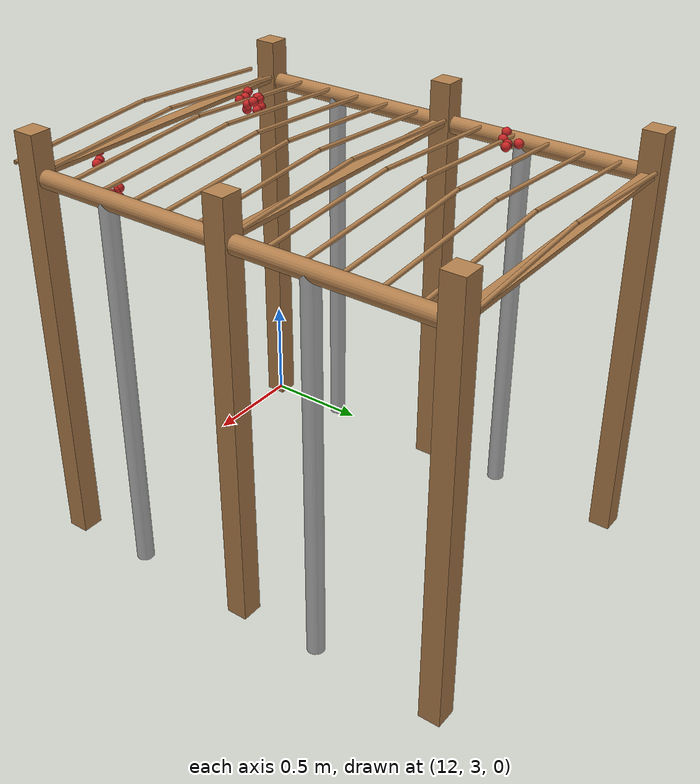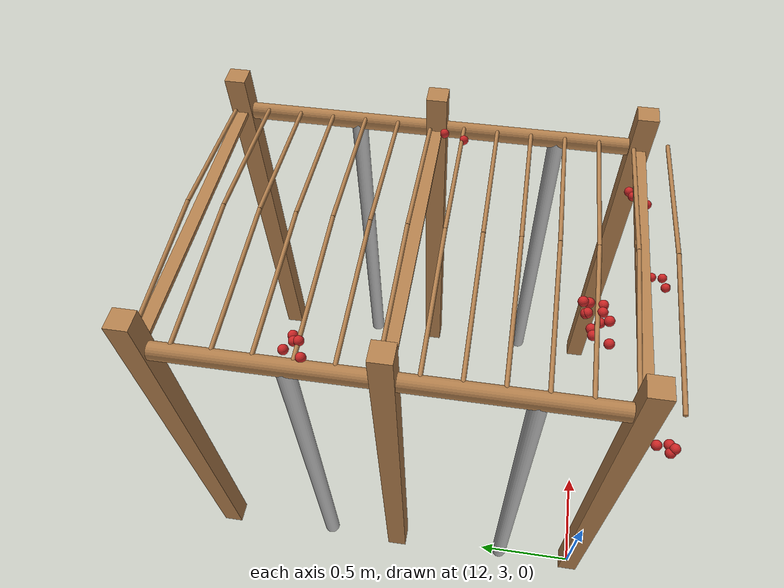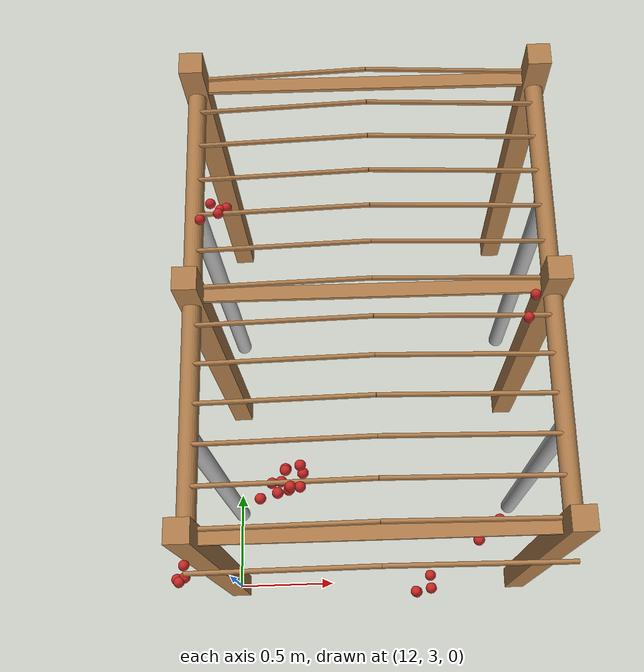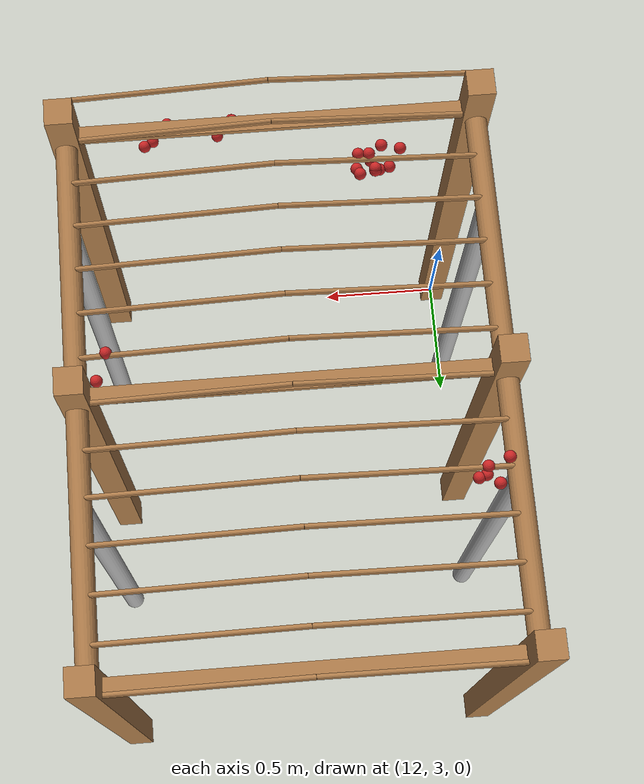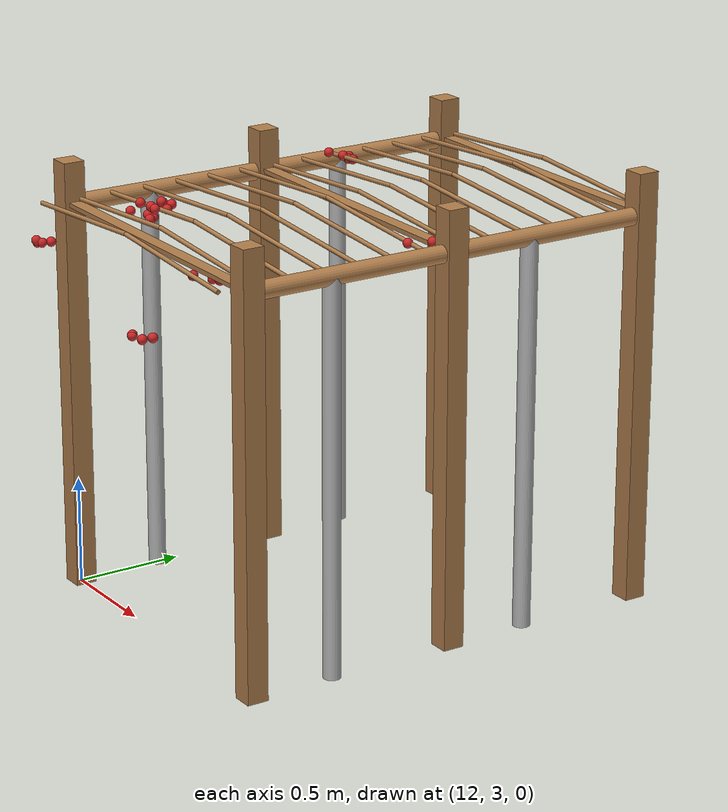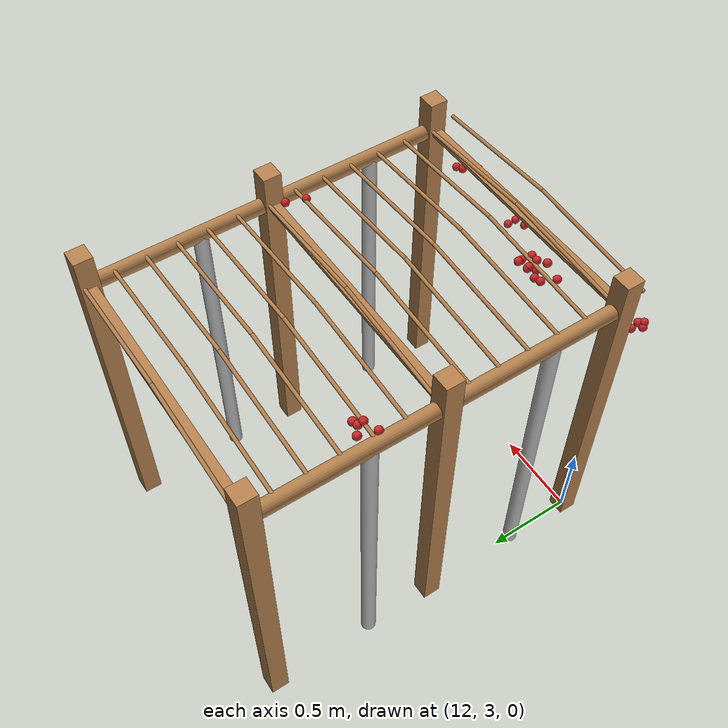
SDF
<sdf version="1.4">
 <model name="pergola">
  <include><name>post_91</name><pose>12.0 3.0 0 0 0 0</pose><uri>model://post</uri></include>
  <include><name>post_92</name><pose>12.0 4.0 0 0 0 0</pose><uri>model://post</uri></include>
  <include><name>post_93</name><pose>12.0 5.0 0 0 0 0</pose><uri>model://post</uri></include>
  <include><name>post_102</name><pose>13.5 3.0 0 0 0 0</pose><uri>model://post</uri></include>
  <include><name>post_103</name><pose>13.5 4.0 0 0 0 0</pose><uri>model://post</uri></include>
  <include><name>post_104</name><pose>13.5 5.0 0 0 0 0</pose><uri>model://post</uri></include>
  <link name="beam_91">
   <pose>12.75 3.0 1.81 0 0 0</pose>
   <collision name="collision"><geometry><box><size>1.5 0.06 0.02</size></box></geometry></collision>
   <visual name="visual">
    <geometry><box><size>1.5 0.06 0.02</size></box></geometry>
    <material><script><name>Gazebo/Wood</name></script></material>
   </visual>
   <inertial>
    <mass>5</mass>
    <inertia>
     <ixx>0.0016666666666666668</ixx>
     <ixy>0.0</ixy>
     <ixz>0.0</ixz>
     <iyy>0.9390000000000001</iyy>
     <iyz>0.0</iyz>
     <izz>0.9376666666666665</izz>
    </inertia>
   </inertial>
  </link>
  <link name="beam_92">
   <pose>12.75 4.0 1.81 0 0 0</pose>
   <collision name="collision"><geometry><box><size>1.5 0.06 0.02</size></box></geometry></collision>
   <visual name="visual">
    <geometry><box><size>1.5 0.06 0.02</size></box></geometry>
    <material><script><name>Gazebo/Wood</name></script></material>
   </visual>
   <inertial>
    <mass>5</mass>
    <inertia>
     <ixx>0.0016666666666666668</ixx>
     <ixy>0.0</ixy>
     <ixz>0.0</ixz>
     <iyy>0.9390000000000001</iyy>
     <iyz>0.0</iyz>
     <izz>0.9376666666666665</izz>
    </inertia>
   </inertial>
  </link>
  <link name="beam_93">
   <pose>12.75 5.0 1.81 0 0 0</pose>
   <collision name="collision"><geometry><box><size>1.5 0.06 0.02</size></box></geometry></collision>
   <visual name="visual">
    <geometry><box><size>1.5 0.06 0.02</size></box></geometry>
    <material><script><name>Gazebo/Wood</name></script></material>
   </visual>
   <inertial>
    <mass>5</mass>
    <inertia>
     <ixx>0.0016666666666666668</ixx>
     <ixy>0.0</ixy>
     <ixz>0.0</ixz>
     <iyy>0.9390000000000001</iyy>
     <iyz>0.0</iyz>
     <izz>0.9376666666666665</izz>
    </inertia>
   </inertial>
  </link>
  <include><name>tree_83</name><pose>12.0 3.4 0 0 0 0</pose><uri>model://tree_trunk</uri></include>
  <include><name>tree_84</name><pose>12.0 4.4 0 0 0 0</pose><uri>model://tree_trunk</uri></include>
  <include><name>tree_93</name><pose>13.5 3.4 0 0 0 0</pose><uri>model://tree_trunk</uri></include>
  <include><name>tree_94</name><pose>13.5 4.4 0 0 0 0</pose><uri>model://tree_trunk</uri></include>
  <link name="baseBranch_83">
   <pose>12.0 3.5 1.8 1.5707963267948966 0 0</pose>
   <collision name="collision">
    <geometry><cylinder><radius>0.04</radius><length>0.94</length></cylinder></geometry>
   </collision>
   <visual name="visual">
    <geometry><cylinder><radius>0.04</radius><length>0.94</length></cylinder></geometry>
    <material><script><name>Gazebo/WoodFloor</name></script></material>
   </visual>
   <inertial>
    <mass>10</mass>
    <inertia>
     <ixx>0.7403333333333334</ixx>
     <ixy>0.0</ixy>
     <ixz>0.0</ixz>
     <iyy>0.7403333333333334</iyy>
     <iyz>0.0</iyz>
     <izz>0.008</izz>
    </inertia>
   </inertial>
  </link>
  <link name="baseBranch_84">
   <pose>12.0 4.5 1.8 1.5707963267948966 0 0</pose>
   <collision name="collision">
    <geometry><cylinder><radius>0.04</radius><length>0.94</length></cylinder></geometry>
   </collision>
   <visual name="visual">
    <geometry><cylinder><radius>0.04</radius><length>0.94</length></cylinder></geometry>
    <material><script><name>Gazebo/WoodFloor</name></script></material>
   </visual>
   <inertial>
    <mass>10</mass>
    <inertia>
     <ixx>0.7403333333333334</ixx>
     <ixy>0.0</ixy>
     <ixz>0.0</ixz>
     <iyy>0.7403333333333334</iyy>
     <iyz>0.0</iyz>
     <izz>0.008</izz>
    </inertia>
   </inertial>
  </link>
  <link name="baseBranch_93">
   <pose>13.5 3.5 1.8 1.5707963267948966 0 0</pose>
   <collision name="collision">
    <geometry><cylinder><radius>0.04</radius><length>0.94</length></cylinder></geometry>
   </collision>
   <visual name="visual">
    <geometry><cylinder><radius>0.04</radius><length>0.94</length></cylinder></geometry>
    <material><script><name>Gazebo/WoodFloor</name></script></material>
   </visual>
   <inertial>
    <mass>10</mass>
    <inertia>
     <ixx>0.7403333333333334</ixx>
     <ixy>0.0</ixy>
     <ixz>0.0</ixz>
     <iyy>0.7403333333333334</iyy>
     <iyz>0.0</iyz>
     <izz>0.008</izz>
    </inertia>
   </inertial>
  </link>
  <link name="baseBranch_94">
   <pose>13.5 4.5 1.8 1.5707963267948966 0 0</pose>
   <collision name="collision">
    <geometry><cylinder><radius>0.04</radius><length>0.94</length></cylinder></geometry>
   </collision>
   <visual name="visual">
    <geometry><cylinder><radius>0.04</radius><length>0.94</length></cylinder></geometry>
    <material><script><name>Gazebo/WoodFloor</name></script></material>
   </visual>
   <inertial>
    <mass>10</mass>
    <inertia>
     <ixx>0.7403333333333334</ixx>
     <ixy>0.0</ixy>
     <ixz>0.0</ixz>
     <iyy>0.7403333333333334</iyy>
     <iyz>0.0</iyz>
     <izz>0.008</izz>
    </inertia>
   </inertial>
  </link>
  <link name="vine_994">
   <pose>12.375 2.863333333333333 1.85 0 1.5042281630190728 0</pose>
   <collision name="collision">
    <geometry><cylinder><radius>0.01</radius><length>0.7516648189186453</length></cylinder></geometry>
   </collision>
   <visual name="visual">
    <geometry><cylinder><radius>0.01</radius><length>0.7516648189186453</length></cylinder></geometry>
    <material><script><name>Gazebo/WoodFloor</name></script></material>
   </visual>
   <inertial>
    <mass>5</mass>
    <inertia>
     <ixx>0.23554166666666657</ixx>
     <ixy>0.0</ixy>
     <ixz>0.0</ixz>
     <iyy>0.23554166666666657</iyy>
     <iyz>0.0</iyz>
     <izz>0.00025</izz>
    </inertia>
   </inertial>
  </link>
  <link name="vine_995">
   <pose>13.125 2.863333333333333 1.85 0 -1.5042281630190728 0</pose>
   <collision name="collision">
    <geometry><cylinder><radius>0.01</radius><length>0.7516648189186453</length></cylinder></geometry>
   </collision>
   <visual name="visual">
    <geometry><cylinder><radius>0.01</radius><length>0.7516648189186453</length></cylinder></geometry>
    <material><script><name>Gazebo/WoodFloor</name></script></material>
   </visual>
   <inertial>
    <mass>5</mass>
    <inertia>
     <ixx>0.23554166666666657</ixx>
     <ixy>0.0</ixy>
     <ixz>0.0</ixz>
     <iyy>0.23554166666666657</iyy>
     <iyz>0.0</iyz>
     <izz>0.00025</izz>
    </inertia>
   </inertial>
  </link>
  <link name="vine_996">
   <pose>12.375 3.03 1.85 0 1.5042281630190728 0</pose>
   <collision name="collision">
    <geometry><cylinder><radius>0.01</radius><length>0.7516648189186453</length></cylinder></geometry>
   </collision>
   <visual name="visual">
    <geometry><cylinder><radius>0.01</radius><length>0.7516648189186453</length></cylinder></geometry>
    <material><script><name>Gazebo/WoodFloor</name></script></material>
   </visual>
   <inertial>
    <mass>5</mass>
    <inertia>
     <ixx>0.23554166666666657</ixx>
     <ixy>0.0</ixy>
     <ixz>0.0</ixz>
     <iyy>0.23554166666666657</iyy>
     <iyz>0.0</iyz>
     <izz>0.00025</izz>
    </inertia>
   </inertial>
  </link>
  <link name="vine_997">
   <pose>13.125 3.03 1.85 0 -1.5042281630190728 0</pose>
   <collision name="collision">
    <geometry><cylinder><radius>0.01</radius><length>0.7516648189186453</length></cylinder></geometry>
   </collision>
   <visual name="visual">
    <geometry><cylinder><radius>0.01</radius><length>0.7516648189186453</length></cylinder></geometry>
    <material><script><name>Gazebo/WoodFloor</name></script></material>
   </visual>
   <inertial>
    <mass>5</mass>
    <inertia>
     <ixx>0.23554166666666657</ixx>
     <ixy>0.0</ixy>
     <ixz>0.0</ixz>
     <iyy>0.23554166666666657</iyy>
     <iyz>0.0</iyz>
     <izz>0.00025</izz>
    </inertia>
   </inertial>
  </link>
  <link name="vine_998">
   <pose>12.375 3.1966666666666663 1.85 0 1.5042281630190728 0</pose>
   <collision name="collision">
    <geometry><cylinder><radius>0.01</radius><length>0.7516648189186453</length></cylinder></geometry>
   </collision>
   <visual name="visual">
    <geometry><cylinder><radius>0.01</radius><length>0.7516648189186453</length></cylinder></geometry>
    <material><script><name>Gazebo/WoodFloor</name></script></material>
   </visual>
   <inertial>
    <mass>5</mass>
    <inertia>
     <ixx>0.23554166666666657</ixx>
     <ixy>0.0</ixy>
     <ixz>0.0</ixz>
     <iyy>0.23554166666666657</iyy>
     <iyz>0.0</iyz>
     <izz>0.00025</izz>
    </inertia>
   </inertial>
  </link>
  <link name="vine_999">
   <pose>13.125 3.1966666666666663 1.85 0 -1.5042281630190728 0</pose>
   <collision name="collision">
    <geometry><cylinder><radius>0.01</radius><length>0.7516648189186453</length></cylinder></geometry>
   </collision>
   <visual name="visual">
    <geometry><cylinder><radius>0.01</radius><length>0.7516648189186453</length></cylinder></geometry>
    <material><script><name>Gazebo/WoodFloor</name></script></material>
   </visual>
   <inertial>
    <mass>5</mass>
    <inertia>
     <ixx>0.23554166666666657</ixx>
     <ixy>0.0</ixy>
     <ixz>0.0</ixz>
     <iyy>0.23554166666666657</iyy>
     <iyz>0.0</iyz>
     <izz>0.00025</izz>
    </inertia>
   </inertial>
  </link>
  <link name="vine_1000">
   <pose>12.375 3.363333333333333 1.85 0 1.5042281630190728 0</pose>
   <collision name="collision">
    <geometry><cylinder><radius>0.01</radius><length>0.7516648189186453</length></cylinder></geometry>
   </collision>
   <visual name="visual">
    <geometry><cylinder><radius>0.01</radius><length>0.7516648189186453</length></cylinder></geometry>
    <material><script><name>Gazebo/WoodFloor</name></script></material>
   </visual>
   <inertial>
    <mass>5</mass>
    <inertia>
     <ixx>0.23554166666666657</ixx>
     <ixy>0.0</ixy>
     <ixz>0.0</ixz>
     <iyy>0.23554166666666657</iyy>
     <iyz>0.0</iyz>
     <izz>0.00025</izz>
    </inertia>
   </inertial>
  </link>
  <link name="vine_1001">
   <pose>13.125 3.363333333333333 1.85 0 -1.5042281630190728 0</pose>
   <collision name="collision">
    <geometry><cylinder><radius>0.01</radius><length>0.7516648189186453</length></cylinder></geometry>
   </collision>
   <visual name="visual">
    <geometry><cylinder><radius>0.01</radius><length>0.7516648189186453</length></cylinder></geometry>
    <material><script><name>Gazebo/WoodFloor</name></script></material>
   </visual>
   <inertial>
    <mass>5</mass>
    <inertia>
     <ixx>0.23554166666666657</ixx>
     <ixy>0.0</ixy>
     <ixz>0.0</ixz>
     <iyy>0.23554166666666657</iyy>
     <iyz>0.0</iyz>
     <izz>0.00025</izz>
    </inertia>
   </inertial>
  </link>
  <link name="vine_1002">
   <pose>12.375 3.53 1.85 0 1.5042281630190728 0</pose>
   <collision name="collision">
    <geometry><cylinder><radius>0.01</radius><length>0.7516648189186453</length></cylinder></geometry>
   </collision>
   <visual name="visual">
    <geometry><cylinder><radius>0.01</radius><length>0.7516648189186453</length></cylinder></geometry>
    <material><script><name>Gazebo/WoodFloor</name></script></material>
   </visual>
   <inertial>
    <mass>5</mass>
    <inertia>
     <ixx>0.23554166666666657</ixx>
     <ixy>0.0</ixy>
     <ixz>0.0</ixz>
     <iyy>0.23554166666666657</iyy>
     <iyz>0.0</iyz>
     <izz>0.00025</izz>
    </inertia>
   </inertial>
  </link>
  <link name="vine_1003">
   <pose>13.125 3.53 1.85 0 -1.5042281630190728 0</pose>
   <collision name="collision">
    <geometry><cylinder><radius>0.01</radius><length>0.7516648189186453</length></cylinder></geometry>
   </collision>
   <visual name="visual">
    <geometry><cylinder><radius>0.01</radius><length>0.7516648189186453</length></cylinder></geometry>
    <material><script><name>Gazebo/WoodFloor</name></script></material>
   </visual>
   <inertial>
    <mass>5</mass>
    <inertia>
     <ixx>0.23554166666666657</ixx>
     <ixy>0.0</ixy>
     <ixz>0.0</ixz>
     <iyy>0.23554166666666657</iyy>
     <iyz>0.0</iyz>
     <izz>0.00025</izz>
    </inertia>
   </inertial>
  </link>
  <link name="vine_1004">
   <pose>12.375 3.6966666666666663 1.85 0 1.5042281630190728 0</pose>
   <collision name="collision">
    <geometry><cylinder><radius>0.01</radius><length>0.7516648189186453</length></cylinder></geometry>
   </collision>
   <visual name="visual">
    <geometry><cylinder><radius>0.01</radius><length>0.7516648189186453</length></cylinder></geometry>
    <material><script><name>Gazebo/WoodFloor</name></script></material>
   </visual>
   <inertial>
    <mass>5</mass>
    <inertia>
     <ixx>0.23554166666666657</ixx>
     <ixy>0.0</ixy>
     <ixz>0.0</ixz>
     <iyy>0.23554166666666657</iyy>
     <iyz>0.0</iyz>
     <izz>0.00025</izz>
    </inertia>
   </inertial>
  </link>
  <link name="vine_1005">
   <pose>13.125 3.6966666666666663 1.85 0 -1.5042281630190728 0</pose>
   <collision name="collision">
    <geometry><cylinder><radius>0.01</radius><length>0.7516648189186453</length></cylinder></geometry>
   </collision>
   <visual name="visual">
    <geometry><cylinder><radius>0.01</radius><length>0.7516648189186453</length></cylinder></geometry>
    <material><script><name>Gazebo/WoodFloor</name></script></material>
   </visual>
   <inertial>
    <mass>5</mass>
    <inertia>
     <ixx>0.23554166666666657</ixx>
     <ixy>0.0</ixy>
     <ixz>0.0</ixz>
     <iyy>0.23554166666666657</iyy>
     <iyz>0.0</iyz>
     <izz>0.00025</izz>
    </inertia>
   </inertial>
  </link>
  <link name="vine_1006">
   <pose>12.375 3.863333333333333 1.85 0 1.5042281630190728 0</pose>
   <collision name="collision">
    <geometry><cylinder><radius>0.01</radius><length>0.7516648189186453</length></cylinder></geometry>
   </collision>
   <visual name="visual">
    <geometry><cylinder><radius>0.01</radius><length>0.7516648189186453</length></cylinder></geometry>
    <material><script><name>Gazebo/WoodFloor</name></script></material>
   </visual>
   <inertial>
    <mass>5</mass>
    <inertia>
     <ixx>0.23554166666666657</ixx>
     <ixy>0.0</ixy>
     <ixz>0.0</ixz>
     <iyy>0.23554166666666657</iyy>
     <iyz>0.0</iyz>
     <izz>0.00025</izz>
    </inertia>
   </inertial>
  </link>
  <link name="vine_1007">
   <pose>13.125 3.863333333333333 1.85 0 -1.5042281630190728 0</pose>
   <collision name="collision">
    <geometry><cylinder><radius>0.01</radius><length>0.7516648189186453</length></cylinder></geometry>
   </collision>
   <visual name="visual">
    <geometry><cylinder><radius>0.01</radius><length>0.7516648189186453</length></cylinder></geometry>
    <material><script><name>Gazebo/WoodFloor</name></script></material>
   </visual>
   <inertial>
    <mass>5</mass>
    <inertia>
     <ixx>0.23554166666666657</ixx>
     <ixy>0.0</ixy>
     <ixz>0.0</ixz>
     <iyy>0.23554166666666657</iyy>
     <iyz>0.0</iyz>
     <izz>0.00025</izz>
    </inertia>
   </inertial>
  </link>
  <link name="vine_1008">
   <pose>12.375 4.03 1.85 0 1.5042281630190728 0</pose>
   <collision name="collision">
    <geometry><cylinder><radius>0.01</radius><length>0.7516648189186453</length></cylinder></geometry>
   </collision>
   <visual name="visual">
    <geometry><cylinder><radius>0.01</radius><length>0.7516648189186453</length></cylinder></geometry>
    <material><script><name>Gazebo/WoodFloor</name></script></material>
   </visual>
   <inertial>
    <mass>5</mass>
    <inertia>
     <ixx>0.23554166666666657</ixx>
     <ixy>0.0</ixy>
     <ixz>0.0</ixz>
     <iyy>0.23554166666666657</iyy>
     <iyz>0.0</iyz>
     <izz>0.00025</izz>
    </inertia>
   </inertial>
  </link>
  <link name="vine_1009">
   <pose>13.125 4.03 1.85 0 -1.5042281630190728 0</pose>
   <collision name="collision">
    <geometry><cylinder><radius>0.01</radius><length>0.7516648189186453</length></cylinder></geometry>
   </collision>
   <visual name="visual">
    <geometry><cylinder><radius>0.01</radius><length>0.7516648189186453</length></cylinder></geometry>
    <material><script><name>Gazebo/WoodFloor</name></script></material>
   </visual>
   <inertial>
    <mass>5</mass>
    <inertia>
     <ixx>0.23554166666666657</ixx>
     <ixy>0.0</ixy>
     <ixz>0.0</ixz>
     <iyy>0.23554166666666657</iyy>
     <iyz>0.0</iyz>
     <izz>0.00025</izz>
    </inertia>
   </inertial>
  </link>
  <link name="vine_1010">
   <pose>12.375 4.196666666666666 1.85 0 1.5042281630190728 0</pose>
   <collision name="collision">
    <geometry><cylinder><radius>0.01</radius><length>0.7516648189186453</length></cylinder></geometry>
   </collision>
   <visual name="visual">
    <geometry><cylinder><radius>0.01</radius><length>0.7516648189186453</length></cylinder></geometry>
    <material><script><name>Gazebo/WoodFloor</name></script></material>
   </visual>
   <inertial>
    <mass>5</mass>
    <inertia>
     <ixx>0.23554166666666657</ixx>
     <ixy>0.0</ixy>
     <ixz>0.0</ixz>
     <iyy>0.23554166666666657</iyy>
     <iyz>0.0</iyz>
     <izz>0.00025</izz>
    </inertia>
   </inertial>
  </link>
  <link name="vine_1011">
   <pose>13.125 4.196666666666666 1.85 0 -1.5042281630190728 0</pose>
   <collision name="collision">
    <geometry><cylinder><radius>0.01</radius><length>0.7516648189186453</length></cylinder></geometry>
   </collision>
   <visual name="visual">
    <geometry><cylinder><radius>0.01</radius><length>0.7516648189186453</length></cylinder></geometry>
    <material><script><name>Gazebo/WoodFloor</name></script></material>
   </visual>
   <inertial>
    <mass>5</mass>
    <inertia>
     <ixx>0.23554166666666657</ixx>
     <ixy>0.0</ixy>
     <ixz>0.0</ixz>
     <iyy>0.23554166666666657</iyy>
     <iyz>0.0</iyz>
     <izz>0.00025</izz>
    </inertia>
   </inertial>
  </link>
  <link name="vine_1012">
   <pose>12.375 4.363333333333333 1.85 0 1.5042281630190728 0</pose>
   <collision name="collision">
    <geometry><cylinder><radius>0.01</radius><length>0.7516648189186453</length></cylinder></geometry>
   </collision>
   <visual name="visual">
    <geometry><cylinder><radius>0.01</radius><length>0.7516648189186453</length></cylinder></geometry>
    <material><script><name>Gazebo/WoodFloor</name></script></material>
   </visual>
   <inertial>
    <mass>5</mass>
    <inertia>
     <ixx>0.23554166666666657</ixx>
     <ixy>0.0</ixy>
     <ixz>0.0</ixz>
     <iyy>0.23554166666666657</iyy>
     <iyz>0.0</iyz>
     <izz>0.00025</izz>
    </inertia>
   </inertial>
  </link>
  <link name="vine_1013">
   <pose>13.125 4.363333333333333 1.85 0 -1.5042281630190728 0</pose>
   <collision name="collision">
    <geometry><cylinder><radius>0.01</radius><length>0.7516648189186453</length></cylinder></geometry>
   </collision>
   <visual name="visual">
    <geometry><cylinder><radius>0.01</radius><length>0.7516648189186453</length></cylinder></geometry>
    <material><script><name>Gazebo/WoodFloor</name></script></material>
   </visual>
   <inertial>
    <mass>5</mass>
    <inertia>
     <ixx>0.23554166666666657</ixx>
     <ixy>0.0</ixy>
     <ixz>0.0</ixz>
     <iyy>0.23554166666666657</iyy>
     <iyz>0.0</iyz>
     <izz>0.00025</izz>
    </inertia>
   </inertial>
  </link>
  <link name="vine_1014">
   <pose>12.375 4.53 1.85 0 1.5042281630190728 0</pose>
   <collision name="collision">
    <geometry><cylinder><radius>0.01</radius><length>0.7516648189186453</length></cylinder></geometry>
   </collision>
   <visual name="visual">
    <geometry><cylinder><radius>0.01</radius><length>0.7516648189186453</length></cylinder></geometry>
    <material><script><name>Gazebo/WoodFloor</name></script></material>
   </visual>
   <inertial>
    <mass>5</mass>
    <inertia>
     <ixx>0.23554166666666657</ixx>
     <ixy>0.0</ixy>
     <ixz>0.0</ixz>
     <iyy>0.23554166666666657</iyy>
     <iyz>0.0</iyz>
     <izz>0.00025</izz>
    </inertia>
   </inertial>
  </link>
  <link name="vine_1015">
   <pose>13.125 4.53 1.85 0 -1.5042281630190728 0</pose>
   <collision name="collision">
    <geometry><cylinder><radius>0.01</radius><length>0.7516648189186453</length></cylinder></geometry>
   </collision>
   <visual name="visual">
    <geometry><cylinder><radius>0.01</radius><length>0.7516648189186453</length></cylinder></geometry>
    <material><script><name>Gazebo/WoodFloor</name></script></material>
   </visual>
   <inertial>
    <mass>5</mass>
    <inertia>
     <ixx>0.23554166666666657</ixx>
     <ixy>0.0</ixy>
     <ixz>0.0</ixz>
     <iyy>0.23554166666666657</iyy>
     <iyz>0.0</iyz>
     <izz>0.00025</izz>
    </inertia>
   </inertial>
  </link>
  <link name="vine_1016">
   <pose>12.375 4.696666666666666 1.85 0 1.5042281630190728 0</pose>
   <collision name="collision">
    <geometry><cylinder><radius>0.01</radius><length>0.7516648189186453</length></cylinder></geometry>
   </collision>
   <visual name="visual">
    <geometry><cylinder><radius>0.01</radius><length>0.7516648189186453</length></cylinder></geometry>
    <material><script><name>Gazebo/WoodFloor</name></script></material>
   </visual>
   <inertial>
    <mass>5</mass>
    <inertia>
     <ixx>0.23554166666666657</ixx>
     <ixy>0.0</ixy>
     <ixz>0.0</ixz>
     <iyy>0.23554166666666657</iyy>
     <iyz>0.0</iyz>
     <izz>0.00025</izz>
    </inertia>
   </inertial>
  </link>
  <link name="vine_1017">
   <pose>13.125 4.696666666666666 1.85 0 -1.5042281630190728 0</pose>
   <collision name="collision">
    <geometry><cylinder><radius>0.01</radius><length>0.7516648189186453</length></cylinder></geometry>
   </collision>
   <visual name="visual">
    <geometry><cylinder><radius>0.01</radius><length>0.7516648189186453</length></cylinder></geometry>
    <material><script><name>Gazebo/WoodFloor</name></script></material>
   </visual>
   <inertial>
    <mass>5</mass>
    <inertia>
     <ixx>0.23554166666666657</ixx>
     <ixy>0.0</ixy>
     <ixz>0.0</ixz>
     <iyy>0.23554166666666657</iyy>
     <iyz>0.0</iyz>
     <izz>0.00025</izz>
    </inertia>
   </inertial>
  </link>
  <link name="vine_1018">
   <pose>12.375 4.863333333333333 1.85 0 1.5042281630190728 0</pose>
   <collision name="collision">
    <geometry><cylinder><radius>0.01</radius><length>0.7516648189186453</length></cylinder></geometry>
   </collision>
   <visual name="visual">
    <geometry><cylinder><radius>0.01</radius><length>0.7516648189186453</length></cylinder></geometry>
    <material><script><name>Gazebo/WoodFloor</name></script></material>
   </visual>
   <inertial>
    <mass>5</mass>
    <inertia>
     <ixx>0.23554166666666657</ixx>
     <ixy>0.0</ixy>
     <ixz>0.0</ixz>
     <iyy>0.23554166666666657</iyy>
     <iyz>0.0</iyz>
     <izz>0.00025</izz>
    </inertia>
   </inertial>
  </link>
  <link name="vine_1019">
   <pose>13.125 4.863333333333333 1.85 0 -1.5042281630190728 0</pose>
   <collision name="collision">
    <geometry><cylinder><radius>0.01</radius><length>0.7516648189186453</length></cylinder></geometry>
   </collision>
   <visual name="visual">
    <geometry><cylinder><radius>0.01</radius><length>0.7516648189186453</length></cylinder></geometry>
    <material><script><name>Gazebo/WoodFloor</name></script></material>
   </visual>
   <inertial>
    <mass>5</mass>
    <inertia>
     <ixx>0.23554166666666657</ixx>
     <ixy>0.0</ixy>
     <ixz>0.0</ixz>
     <iyy>0.23554166666666657</iyy>
     <iyz>0.0</iyz>
     <izz>0.00025</izz>
    </inertia>
   </inertial>
  </link>
  <link name="vine_1020">
   <pose>12.375 5.03 1.85 0 1.5042281630190728 0</pose>
   <collision name="collision">
    <geometry><cylinder><radius>0.01</radius><length>0.7516648189186453</length></cylinder></geometry>
   </collision>
   <visual name="visual">
    <geometry><cylinder><radius>0.01</radius><length>0.7516648189186453</length></cylinder></geometry>
    <material><script><name>Gazebo/WoodFloor</name></script></material>
   </visual>
   <inertial>
    <mass>5</mass>
    <inertia>
     <ixx>0.23554166666666657</ixx>
     <ixy>0.0</ixy>
     <ixz>0.0</ixz>
     <iyy>0.23554166666666657</iyy>
     <iyz>0.0</iyz>
     <izz>0.00025</izz>
    </inertia>
   </inertial>
  </link>
  <link name="vine_1021">
   <pose>13.125 5.03 1.85 0 -1.5042281630190728 0</pose>
   <collision name="collision">
    <geometry><cylinder><radius>0.01</radius><length>0.7516648189186453</length></cylinder></geometry>
   </collision>
   <visual name="visual">
    <geometry><cylinder><radius>0.01</radius><length>0.7516648189186453</length></cylinder></geometry>
    <material><script><name>Gazebo/WoodFloor</name></script></material>
   </visual>
   <inertial>
    <mass>5</mass>
    <inertia>
     <ixx>0.23554166666666657</ixx>
     <ixy>0.0</ixy>
     <ixz>0.0</ixz>
     <iyy>0.23554166666666657</iyy>
     <iyz>0.0</iyz>
     <izz>0.00025</izz>
    </inertia>
   </inertial>
  </link>
  <link name="fruit_9">
   <pose>12.030577652481815 4.333995408520239 1.839488147443994 0 0 0</pose>
   <collision name="fruit_collision_9"><geometry><sphere><radius>0.022</radius></sphere></geometry></collision>
   <visual name="visual">
    <geometry><sphere><radius>0.022</radius></sphere></geometry>
    <material><script><name>Gazebo/Red</name></script></material>
   </visual>
   <inertial>
    <mass>0.05</mass>
    <inertia>
     <ixx>9.679999999999999e-06</ixx>
     <ixy>0.0</ixy>
     <ixz>0.0</ixz>
     <iyy>9.679999999999999e-06</iyy>
     <iyz>0.0</iyz>
     <izz>9.679999999999999e-06</izz>
    </inertia>
   </inertial>
   <sensor name="fruit_contact_9" type="contact">
    <contact><collision>fruit_collision_9</collision></contact>
   </sensor>
  </link>
  <link name="fruit_41">
   <pose>12.361534613585478 3.15244394587186 1.8682962887434929 0 0 0</pose>
   <collision name="fruit_collision_41"><geometry><sphere><radius>0.022</radius></sphere></geometry></collision>
   <visual name="visual">
    <geometry><sphere><radius>0.022</radius></sphere></geometry>
    <material><script><name>Gazebo/Red</name></script></material>
   </visual>
   <inertial>
    <mass>0.05</mass>
    <inertia>
     <ixx>9.679999999999999e-06</ixx>
     <ixy>0.0</ixy>
     <ixz>0.0</ixz>
     <iyy>9.679999999999999e-06</iyy>
     <iyz>0.0</iyz>
     <izz>9.679999999999999e-06</izz>
    </inertia>
   </inertial>
   <sensor name="fruit_contact_41" type="contact">
    <contact><collision>fruit_collision_41</collision></contact>
   </sensor>
  </link>
  <link name="fruit_59">
   <pose>13.387648612028032 3.8533856877295833 1.8339044927752834 0 0 0</pose>
   <collision name="fruit_collision_59"><geometry><sphere><radius>0.022</radius></sphere></geometry></collision>
   <visual name="visual">
    <geometry><sphere><radius>0.022</radius></sphere></geometry>
    <material><script><name>Gazebo/Red</name></script></material>
   </visual>
   <inertial>
    <mass>0.05</mass>
    <inertia>
     <ixx>9.679999999999999e-06</ixx>
     <ixy>0.0</ixy>
     <ixz>0.0</ixz>
     <iyy>9.679999999999999e-06</iyy>
     <iyz>0.0</iyz>
     <izz>9.679999999999999e-06</izz>
    </inertia>
   </inertial>
   <sensor name="fruit_contact_59" type="contact">
    <contact><collision>fruit_collision_59</collision></contact>
   </sensor>
  </link>
  <link name="fruit_91">
   <pose>12.289121028735755 3.142373760301862 1.8150846664067526 0 0 0</pose>
   <collision name="fruit_collision_91"><geometry><sphere><radius>0.022</radius></sphere></geometry></collision>
   <visual name="visual">
    <geometry><sphere><radius>0.022</radius></sphere></geometry>
    <material><script><name>Gazebo/Red</name></script></material>
   </visual>
   <inertial>
    <mass>0.05</mass>
    <inertia>
     <ixx>9.679999999999999e-06</ixx>
     <ixy>0.0</ixy>
     <ixz>0.0</ixz>
     <iyy>9.679999999999999e-06</iyy>
     <iyz>0.0</iyz>
     <izz>9.679999999999999e-06</izz>
    </inertia>
   </inertial>
   <sensor name="fruit_contact_91" type="contact">
    <contact><collision>fruit_collision_91</collision></contact>
   </sensor>
  </link>
  <link name="fruit_97">
   <pose>13.130313174696049 2.9630468680265545 1.778937940400454 0 0 0</pose>
   <collision name="fruit_collision_97"><geometry><sphere><radius>0.022</radius></sphere></geometry></collision>
   <visual name="visual">
    <geometry><sphere><radius>0.022</radius></sphere></geometry>
    <material><script><name>Gazebo/Red</name></script></material>
   </visual>
   <inertial>
    <mass>0.05</mass>
    <inertia>
     <ixx>9.679999999999999e-06</ixx>
     <ixy>0.0</ixy>
     <ixz>0.0</ixz>
     <iyy>9.679999999999999e-06</iyy>
     <iyz>0.0</iyz>
     <izz>9.679999999999999e-06</izz>
    </inertia>
   </inertial>
   <sensor name="fruit_contact_97" type="contact">
    <contact><collision>fruit_collision_97</collision></contact>
   </sensor>
  </link>
  <link name="fruit_111">
   <pose>12.95351524948519 2.8671918831354577 1.4757983563885515 0 0 0</pose>
   <collision name="fruit_collision_111"><geometry><sphere><radius>0.022</radius></sphere></geometry></collision>
   <visual name="visual">
    <geometry><sphere><radius>0.022</radius></sphere></geometry>
    <material><script><name>Gazebo/Red</name></script></material>
   </visual>
   <inertial>
    <mass>0.05</mass>
    <inertia>
     <ixx>9.679999999999999e-06</ixx>
     <ixy>0.0</ixy>
     <ixz>0.0</ixz>
     <iyy>9.679999999999999e-06</iyy>
     <iyz>0.0</iyz>
     <izz>9.679999999999999e-06</izz>
    </inertia>
   </inertial>
   <sensor name="fruit_contact_111" type="contact">
    <contact><collision>fruit_collision_111</collision></contact>
   </sensor>
  </link>
  <link name="fruit_118">
   <pose>12.95460382481944 2.815692211056923 1.4776080552688526 0 0 0</pose>
   <collision name="fruit_collision_118"><geometry><sphere><radius>0.022</radius></sphere></geometry></collision>
   <visual name="visual">
    <geometry><sphere><radius>0.022</radius></sphere></geometry>
    <material><script><name>Gazebo/Red</name></script></material>
   </visual>
   <inertial>
    <mass>0.05</mass>
    <inertia>
     <ixx>9.679999999999999e-06</ixx>
     <ixy>0.0</ixy>
     <ixz>0.0</ixz>
     <iyy>9.679999999999999e-06</iyy>
     <iyz>0.0</iyz>
     <izz>9.679999999999999e-06</izz>
    </inertia>
   </inertial>
   <sensor name="fruit_contact_118" type="contact">
    <contact><collision>fruit_collision_118</collision></contact>
   </sensor>
  </link>
  <link name="fruit_146">
   <pose>11.940293461453065 2.865556983206769 1.627902535150895 0 0 0</pose>
   <collision name="fruit_collision_146"><geometry><sphere><radius>0.022</radius></sphere></geometry></collision>
   <visual name="visual">
    <geometry><sphere><radius>0.022</radius></sphere></geometry>
    <material><script><name>Gazebo/Red</name></script></material>
   </visual>
   <inertial>
    <mass>0.05</mass>
    <inertia>
     <ixx>9.679999999999999e-06</ixx>
     <ixy>0.0</ixy>
     <ixz>0.0</ixz>
     <iyy>9.679999999999999e-06</iyy>
     <iyz>0.0</iyz>
     <izz>9.679999999999999e-06</izz>
    </inertia>
   </inertial>
   <sensor name="fruit_contact_146" type="contact">
    <contact><collision>fruit_collision_146</collision></contact>
   </sensor>
  </link>
  <link name="fruit_147">
   <pose>13.1868587075093 3.0236459229614923 1.7689792694514261 0 0 0</pose>
   <collision name="fruit_collision_147"><geometry><sphere><radius>0.022</radius></sphere></geometry></collision>
   <visual name="visual">
    <geometry><sphere><radius>0.022</radius></sphere></geometry>
    <material><script><name>Gazebo/Red</name></script></material>
   </visual>
   <inertial>
    <mass>0.05</mass>
    <inertia>
     <ixx>9.679999999999999e-06</ixx>
     <ixy>0.0</ixy>
     <ixz>0.0</ixz>
     <iyy>9.679999999999999e-06</iyy>
     <iyz>0.0</iyz>
     <izz>9.679999999999999e-06</izz>
    </inertia>
   </inertial>
   <sensor name="fruit_contact_147" type="contact">
    <contact><collision>fruit_collision_147</collision></contact>
   </sensor>
  </link>
  <link name="fruit_180">
   <pose>12.895205967098269 2.801839440807539 1.4796706441568417 0 0 0</pose>
   <collision name="fruit_collision_180"><geometry><sphere><radius>0.022</radius></sphere></geometry></collision>
   <visual name="visual">
    <geometry><sphere><radius>0.022</radius></sphere></geometry>
    <material><script><name>Gazebo/Red</name></script></material>
   </visual>
   <inertial>
    <mass>0.05</mass>
    <inertia>
     <ixx>9.679999999999999e-06</ixx>
     <ixy>0.0</ixy>
     <ixz>0.0</ixz>
     <iyy>9.679999999999999e-06</iyy>
     <iyz>0.0</iyz>
     <izz>9.679999999999999e-06</izz>
    </inertia>
   </inertial>
   <sensor name="fruit_contact_180" type="contact">
    <contact><collision>fruit_collision_180</collision></contact>
   </sensor>
  </link>
  <link name="fruit_189">
   <pose>12.891837621358027 2.8043500093816824 1.4824681009363443 0 0 0</pose>
   <collision name="fruit_collision_189"><geometry><sphere><radius>0.022</radius></sphere></geometry></collision>
   <visual name="visual">
    <geometry><sphere><radius>0.022</radius></sphere></geometry>
    <material><script><name>Gazebo/Red</name></script></material>
   </visual>
   <inertial>
    <mass>0.05</mass>
    <inertia>
     <ixx>9.679999999999999e-06</ixx>
     <ixy>0.0</ixy>
     <ixz>0.0</ixz>
     <iyy>9.679999999999999e-06</iyy>
     <iyz>0.0</iyz>
     <izz>9.679999999999999e-06</izz>
    </inertia>
   </inertial>
   <sensor name="fruit_contact_189" type="contact">
    <contact><collision>fruit_collision_189</collision></contact>
   </sensor>
  </link>
  <link name="fruit_214">
   <pose>12.408230021866345 3.1776734391039145 1.8597267429272109 0 0 0</pose>
   <collision name="fruit_collision_214"><geometry><sphere><radius>0.022</radius></sphere></geometry></collision>
   <visual name="visual">
    <geometry><sphere><radius>0.022</radius></sphere></geometry>
    <material><script><name>Gazebo/Red</name></script></material>
   </visual>
   <inertial>
    <mass>0.05</mass>
    <inertia>
     <ixx>9.679999999999999e-06</ixx>
     <ixy>0.0</ixy>
     <ixz>0.0</ixz>
     <iyy>9.679999999999999e-06</iyy>
     <iyz>0.0</iyz>
     <izz>9.679999999999999e-06</izz>
    </inertia>
   </inertial>
   <sensor name="fruit_contact_214" type="contact">
    <contact><collision>fruit_collision_214</collision></contact>
   </sensor>
  </link>
  <link name="fruit_219">
   <pose>12.391185933156125 3.240248730295056 1.867145134124616 0 0 0</pose>
   <collision name="fruit_collision_219"><geometry><sphere><radius>0.022</radius></sphere></geometry></collision>
   <visual name="visual">
    <geometry><sphere><radius>0.022</radius></sphere></geometry>
    <material><script><name>Gazebo/Red</name></script></material>
   </visual>
   <inertial>
    <mass>0.05</mass>
    <inertia>
     <ixx>9.679999999999999e-06</ixx>
     <ixy>0.0</ixy>
     <ixz>0.0</ixz>
     <iyy>9.679999999999999e-06</iyy>
     <iyz>0.0</iyz>
     <izz>9.679999999999999e-06</izz>
    </inertia>
   </inertial>
   <sensor name="fruit_contact_219" type="contact">
    <contact><collision>fruit_collision_219</collision></contact>
   </sensor>
  </link>
  <link name="fruit_222">
   <pose>11.951967849316068 2.852463477469425 1.6440786514693513 0 0 0</pose>
   <collision name="fruit_collision_222"><geometry><sphere><radius>0.022</radius></sphere></geometry></collision>
   <visual name="visual">
    <geometry><sphere><radius>0.022</radius></sphere></geometry>
    <material><script><name>Gazebo/Red</name></script></material>
   </visual>
   <inertial>
    <mass>0.05</mass>
    <inertia>
     <ixx>9.679999999999999e-06</ixx>
     <ixy>0.0</ixy>
     <ixz>0.0</ixz>
     <iyy>9.679999999999999e-06</iyy>
     <iyz>0.0</iyz>
     <izz>9.679999999999999e-06</izz>
    </inertia>
   </inertial>
   <sensor name="fruit_contact_222" type="contact">
    <contact><collision>fruit_collision_222</collision></contact>
   </sensor>
  </link>
  <link name="fruit_240">
   <pose>11.965607153339104 2.9191293713565885 1.6294968097885316 0 0 0</pose>
   <collision name="fruit_collision_240"><geometry><sphere><radius>0.022</radius></sphere></geometry></collision>
   <visual name="visual">
    <geometry><sphere><radius>0.022</radius></sphere></geometry>
    <material><script><name>Gazebo/Red</name></script></material>
   </visual>
   <inertial>
    <mass>0.05</mass>
    <inertia>
     <ixx>9.679999999999999e-06</ixx>
     <ixy>0.0</ixy>
     <ixz>0.0</ixz>
     <iyy>9.679999999999999e-06</iyy>
     <iyz>0.0</iyz>
     <izz>9.679999999999999e-06</izz>
    </inertia>
   </inertial>
   <sensor name="fruit_contact_240" type="contact">
    <contact><collision>fruit_collision_240</collision></contact>
   </sensor>
  </link>
  <link name="fruit_263">
   <pose>12.113464327412995 4.386380687263904 1.8218347992351482 0 0 0</pose>
   <collision name="fruit_collision_263"><geometry><sphere><radius>0.022</radius></sphere></geometry></collision>
   <visual name="visual">
    <geometry><sphere><radius>0.022</radius></sphere></geometry>
    <material><script><name>Gazebo/Red</name></script></material>
   </visual>
   <inertial>
    <mass>0.05</mass>
    <inertia>
     <ixx>9.679999999999999e-06</ixx>
     <ixy>0.0</ixy>
     <ixz>0.0</ixz>
     <iyy>9.679999999999999e-06</iyy>
     <iyz>0.0</iyz>
     <izz>9.679999999999999e-06</izz>
    </inertia>
   </inertial>
   <sensor name="fruit_contact_263" type="contact">
    <contact><collision>fruit_collision_263</collision></contact>
   </sensor>
  </link>
  <link name="fruit_327">
   <pose>12.140335704006816 4.395028223109851 1.821683516202913 0 0 0</pose>
   <collision name="fruit_collision_327"><geometry><sphere><radius>0.022</radius></sphere></geometry></collision>
   <visual name="visual">
    <geometry><sphere><radius>0.022</radius></sphere></geometry>
    <material><script><name>Gazebo/Red</name></script></material>
   </visual>
   <inertial>
    <mass>0.05</mass>
    <inertia>
     <ixx>9.679999999999999e-06</ixx>
     <ixy>0.0</ixy>
     <ixz>0.0</ixz>
     <iyy>9.679999999999999e-06</iyy>
     <iyz>0.0</iyz>
     <izz>9.679999999999999e-06</izz>
    </inertia>
   </inertial>
   <sensor name="fruit_contact_327" type="contact">
    <contact><collision>fruit_collision_327</collision></contact>
   </sensor>
  </link>
  <link name="fruit_334">
   <pose>12.333055210686494 3.2050633537568247 1.7989955780112483 0 0 0</pose>
   <collision name="fruit_collision_334"><geometry><sphere><radius>0.022</radius></sphere></geometry></collision>
   <visual name="visual">
    <geometry><sphere><radius>0.022</radius></sphere></geometry>
    <material><script><name>Gazebo/Red</name></script></material>
   </visual>
   <inertial>
    <mass>0.05</mass>
    <inertia>
     <ixx>9.679999999999999e-06</ixx>
     <ixy>0.0</ixy>
     <ixz>0.0</ixz>
     <iyy>9.679999999999999e-06</iyy>
     <iyz>0.0</iyz>
     <izz>9.679999999999999e-06</izz>
    </inertia>
   </inertial>
   <sensor name="fruit_contact_334" type="contact">
    <contact><collision>fruit_collision_334</collision></contact>
   </sensor>
  </link>
  <link name="fruit_336">
   <pose>12.39902100688443 3.17634850823059 1.7989917688286212 0 0 0</pose>
   <collision name="fruit_collision_336"><geometry><sphere><radius>0.022</radius></sphere></geometry></collision>
   <visual name="visual">
    <geometry><sphere><radius>0.022</radius></sphere></geometry>
    <material><script><name>Gazebo/Red</name></script></material>
   </visual>
   <inertial>
    <mass>0.05</mass>
    <inertia>
     <ixx>9.679999999999999e-06</ixx>
     <ixy>0.0</ixy>
     <ixz>0.0</ixz>
     <iyy>9.679999999999999e-06</iyy>
     <iyz>0.0</iyz>
     <izz>9.679999999999999e-06</izz>
    </inertia>
   </inertial>
   <sensor name="fruit_contact_336" type="contact">
    <contact><collision>fruit_collision_336</collision></contact>
   </sensor>
  </link>
  <link name="fruit_347">
   <pose>12.36876254077344 3.211061980499694 1.793772807762459 0 0 0</pose>
   <collision name="fruit_collision_347"><geometry><sphere><radius>0.022</radius></sphere></geometry></collision>
   <visual name="visual">
    <geometry><sphere><radius>0.022</radius></sphere></geometry>
    <material><script><name>Gazebo/Red</name></script></material>
   </visual>
   <inertial>
    <mass>0.05</mass>
    <inertia>
     <ixx>9.679999999999999e-06</ixx>
     <ixy>0.0</ixy>
     <ixz>0.0</ixz>
     <iyy>9.679999999999999e-06</iyy>
     <iyz>0.0</iyz>
     <izz>9.679999999999999e-06</izz>
    </inertia>
   </inertial>
   <sensor name="fruit_contact_347" type="contact">
    <contact><collision>fruit_collision_347</collision></contact>
   </sensor>
  </link>
  <link name="fruit_367">
   <pose>12.07023679356459 4.418410478448096 1.8182805933644577 0 0 0</pose>
   <collision name="fruit_collision_367"><geometry><sphere><radius>0.022</radius></sphere></geometry></collision>
   <visual name="visual">
    <geometry><sphere><radius>0.022</radius></sphere></geometry>
    <material><script><name>Gazebo/Red</name></script></material>
   </visual>
   <inertial>
    <mass>0.05</mass>
    <inertia>
     <ixx>9.679999999999999e-06</ixx>
     <ixy>0.0</ixy>
     <ixz>0.0</ixz>
     <iyy>9.679999999999999e-06</iyy>
     <iyz>0.0</iyz>
     <izz>9.679999999999999e-06</izz>
    </inertia>
   </inertial>
   <sensor name="fruit_contact_367" type="contact">
    <contact><collision>fruit_collision_367</collision></contact>
   </sensor>
  </link>
  <link name="fruit_377">
   <pose>12.446595077054045 3.175405098384004 1.857909179585456 0 0 0</pose>
   <collision name="fruit_collision_377"><geometry><sphere><radius>0.022</radius></sphere></geometry></collision>
   <visual name="visual">
    <geometry><sphere><radius>0.022</radius></sphere></geometry>
    <material><script><name>Gazebo/Red</name></script></material>
   </visual>
   <inertial>
    <mass>0.05</mass>
    <inertia>
     <ixx>9.679999999999999e-06</ixx>
     <ixy>0.0</ixy>
     <ixz>0.0</ixz>
     <iyy>9.679999999999999e-06</iyy>
     <iyz>0.0</iyz>
     <izz>9.679999999999999e-06</izz>
    </inertia>
   </inertial>
   <sensor name="fruit_contact_377" type="contact">
    <contact><collision>fruit_collision_377</collision></contact>
   </sensor>
  </link>
  <link name="fruit_402">
   <pose>12.45673944855846 3.230055432562223 1.8506608851732267 0 0 0</pose>
   <collision name="fruit_collision_402"><geometry><sphere><radius>0.022</radius></sphere></geometry></collision>
   <visual name="visual">
    <geometry><sphere><radius>0.022</radius></sphere></geometry>
    <material><script><name>Gazebo/Red</name></script></material>
   </visual>
   <inertial>
    <mass>0.05</mass>
    <inertia>
     <ixx>9.679999999999999e-06</ixx>
     <ixy>0.0</ixy>
     <ixz>0.0</ixz>
     <iyy>9.679999999999999e-06</iyy>
     <iyz>0.0</iyz>
     <izz>9.679999999999999e-06</izz>
    </inertia>
   </inertial>
   <sensor name="fruit_contact_402" type="contact">
    <contact><collision>fruit_collision_402</collision></contact>
   </sensor>
  </link>
  <link name="fruit_466">
   <pose>11.972229907851503 2.870809437692309 1.6347391758577003 0 0 0</pose>
   <collision name="fruit_collision_466"><geometry><sphere><radius>0.022</radius></sphere></geometry></collision>
   <visual name="visual">
    <geometry><sphere><radius>0.022</radius></sphere></geometry>
    <material><script><name>Gazebo/Red</name></script></material>
   </visual>
   <inertial>
    <mass>0.05</mass>
    <inertia>
     <ixx>9.679999999999999e-06</ixx>
     <ixy>0.0</ixy>
     <ixz>0.0</ixz>
     <iyy>9.679999999999999e-06</iyy>
     <iyz>0.0</iyz>
     <izz>9.679999999999999e-06</izz>
    </inertia>
   </inertial>
   <sensor name="fruit_contact_466" type="contact">
    <contact><collision>fruit_collision_466</collision></contact>
   </sensor>
  </link>
  <link name="fruit_467">
   <pose>12.391211263255698 3.246171100476789 1.8620731770542576 0 0 0</pose>
   <collision name="fruit_collision_467"><geometry><sphere><radius>0.022</radius></sphere></geometry></collision>
   <visual name="visual">
    <geometry><sphere><radius>0.022</radius></sphere></geometry>
    <material><script><name>Gazebo/Red</name></script></material>
   </visual>
   <inertial>
    <mass>0.05</mass>
    <inertia>
     <ixx>9.679999999999999e-06</ixx>
     <ixy>0.0</ixy>
     <ixz>0.0</ixz>
     <iyy>9.679999999999999e-06</iyy>
     <iyz>0.0</iyz>
     <izz>9.679999999999999e-06</izz>
    </inertia>
   </inertial>
   <sensor name="fruit_contact_467" type="contact">
    <contact><collision>fruit_collision_467</collision></contact>
   </sensor>
  </link>
  <link name="fruit_481">
   <pose>12.107402508368027 4.361225453042268 1.8378422848947786 0 0 0</pose>
   <collision name="fruit_collision_481"><geometry><sphere><radius>0.022</radius></sphere></geometry></collision>
   <visual name="visual">
    <geometry><sphere><radius>0.022</radius></sphere></geometry>
    <material><script><name>Gazebo/Red</name></script></material>
   </visual>
   <inertial>
    <mass>0.05</mass>
    <inertia>
     <ixx>9.679999999999999e-06</ixx>
     <ixy>0.0</ixy>
     <ixz>0.0</ixz>
     <iyy>9.679999999999999e-06</iyy>
     <iyz>0.0</iyz>
     <izz>9.679999999999999e-06</izz>
    </inertia>
   </inertial>
   <sensor name="fruit_contact_481" type="contact">
    <contact><collision>fruit_collision_481</collision></contact>
   </sensor>
  </link>
  <link name="fruit_482">
   <pose>13.2173265250216 3.04093664258563 1.7679132799833375 0 0 0</pose>
   <collision name="fruit_collision_482"><geometry><sphere><radius>0.022</radius></sphere></geometry></collision>
   <visual name="visual">
    <geometry><sphere><radius>0.022</radius></sphere></geometry>
    <material><script><name>Gazebo/Red</name></script></material>
   </visual>
   <inertial>
    <mass>0.05</mass>
    <inertia>
     <ixx>9.679999999999999e-06</ixx>
     <ixy>0.0</ixy>
     <ixz>0.0</ixz>
     <iyy>9.679999999999999e-06</iyy>
     <iyz>0.0</iyz>
     <izz>9.679999999999999e-06</izz>
    </inertia>
   </inertial>
   <sensor name="fruit_contact_482" type="contact">
    <contact><collision>fruit_collision_482</collision></contact>
   </sensor>
  </link>
  <link name="fruit_486">
   <pose>12.447433834486443 3.258004797697592 1.86649880265285 0 0 0</pose>
   <collision name="fruit_collision_486"><geometry><sphere><radius>0.022</radius></sphere></geometry></collision>
   <visual name="visual">
    <geometry><sphere><radius>0.022</radius></sphere></geometry>
    <material><script><name>Gazebo/Red</name></script></material>
   </visual>
   <inertial>
    <mass>0.05</mass>
    <inertia>
     <ixx>9.679999999999999e-06</ixx>
     <ixy>0.0</ixy>
     <ixz>0.0</ixz>
     <iyy>9.679999999999999e-06</iyy>
     <iyz>0.0</iyz>
     <izz>9.679999999999999e-06</izz>
    </inertia>
   </inertial>
   <sensor name="fruit_contact_486" type="contact">
    <contact><collision>fruit_collision_486</collision></contact>
   </sensor>
  </link>
  <link name="fruit_488">
   <pose>13.424281842419962 3.953684255316838 1.8325712125652507 0 0 0</pose>
   <collision name="fruit_collision_488"><geometry><sphere><radius>0.022</radius></sphere></geometry></collision>
   <visual name="visual">
    <geometry><sphere><radius>0.022</radius></sphere></geometry>
    <material><script><name>Gazebo/Red</name></script></material>
   </visual>
   <inertial>
    <mass>0.05</mass>
    <inertia>
     <ixx>9.679999999999999e-06</ixx>
     <ixy>0.0</ixy>
     <ixz>0.0</ixz>
     <iyy>9.679999999999999e-06</iyy>
     <iyz>0.0</iyz>
     <izz>9.679999999999999e-06</izz>
    </inertia>
   </inertial>
   <sensor name="fruit_contact_488" type="contact">
    <contact><collision>fruit_collision_488</collision></contact>
   </sensor>
  </link>
 </model>
</sdf>
